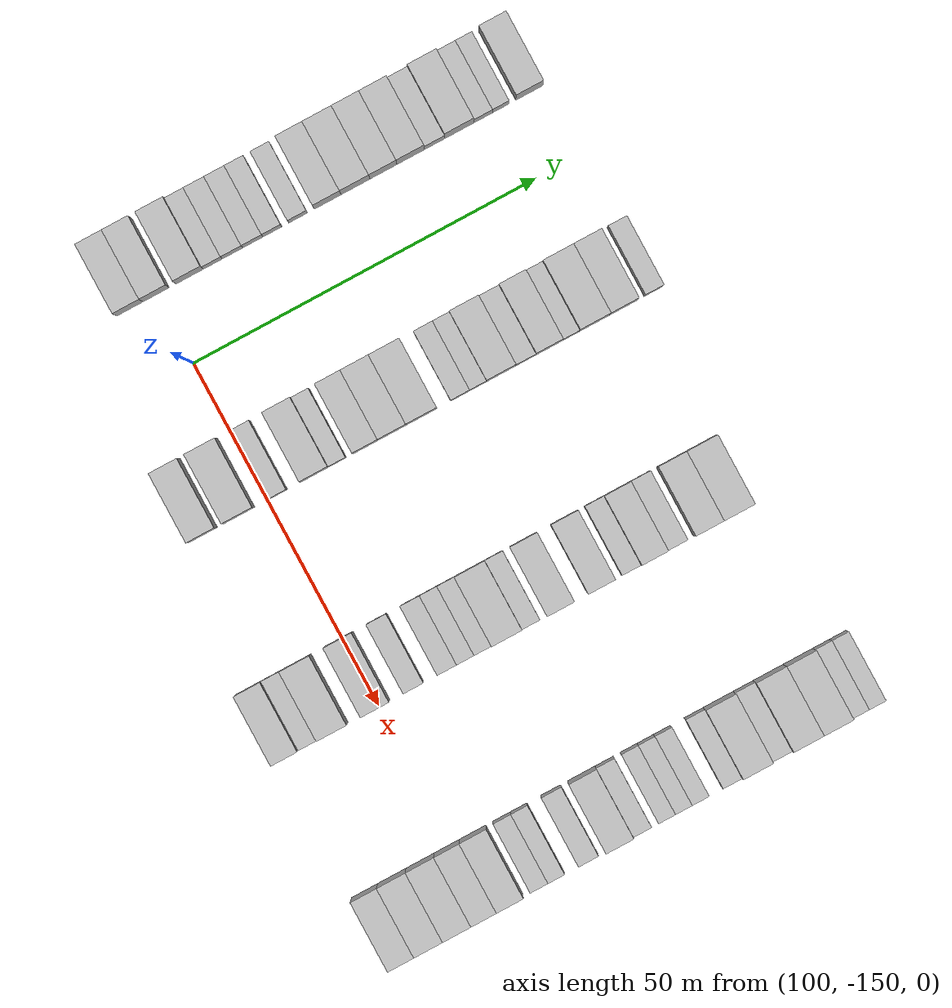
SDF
<sdf version="1.6">
 <world name="default">
  <model name="building_512">
   <static>1</static>
   <pose>85.0000 -153.8680 0 0.000000 0.000000 0.000000</pose>
   <link name="link">
    <pose>0 0 4.50 0 0 0</pose>
    <collision name="collision"><geometry><box><size>10.0000 3.8406 9.0000</size></box></geometry></collision>
    <visual name="visual">
     <cast_shadows>0</cast_shadows>
     <geometry><box><size>10.0000 3.8406 9.0000</size></box></geometry>
     <material>
      <script>
       <uri>model://HANNAS_wall/materials/scripts</uri>
       <uri>model://HANNAS_wall/materials/textures</uri>
       <name>vrc/HANNAS_wall</name>
      </script>
     </material>
    </visual>
   </link>
  </model>
  <model name="building_513">
   <static>1</static>
   <pose>85.0000 -150.0363 0 0.000000 0.000000 0.000000</pose>
   <link name="link">
    <pose>0 0 4.50 0 0 0</pose>
    <collision name="collision"><geometry><box><size>10.0000 3.8228 9.0000</size></box></geometry></collision>
    <visual name="visual">
     <cast_shadows>0</cast_shadows>
     <geometry><box><size>10.0000 3.8228 9.0000</size></box></geometry>
     <material>
      <script>
       <uri>model://HANNAS_wall/materials/scripts</uri>
       <uri>model://HANNAS_wall/materials/textures</uri>
       <name>vrc/HANNAS_wall</name>
      </script>
     </material>
    </visual>
   </link>
  </model>
  <model name="building_514">
   <static>1</static>
   <pose>85.0000 -145.1212 0 0.000000 0.000000 0.000000</pose>
   <link name="link">
    <pose>0 0 4.50 0 0 0</pose>
    <collision name="collision"><geometry><box><size>10.0000 4.0075 9.0000</size></box></geometry></collision>
    <visual name="visual">
     <cast_shadows>0</cast_shadows>
     <geometry><box><size>10.0000 4.0075 9.0000</size></box></geometry>
     <material>
      <script>
       <uri>model://HANNAS_wall/materials/scripts</uri>
       <uri>model://HANNAS_wall/materials/textures</uri>
       <name>vrc/HANNAS_wall</name>
      </script>
     </material>
    </visual>
   </link>
  </model>
  <model name="building_515">
   <static>1</static>
   <pose>85.0000 -141.7422 0 0.000000 0.000000 0.000000</pose>
   <link name="link">
    <pose>0 0 3.00 0 0 0</pose>
    <collision name="collision"><geometry><box><size>10.0000 2.7504 6.0000</size></box></geometry></collision>
    <visual name="visual">
     <cast_shadows>0</cast_shadows>
     <geometry><box><size>10.0000 2.7504 6.0000</size></box></geometry>
     <material>
      <script>
       <uri>model://HANNAS_wall/materials/scripts</uri>
       <uri>model://HANNAS_wall/materials/textures</uri>
       <name>vrc/HANNAS_wall</name>
      </script>
     </material>
    </visual>
   </link>
  </model>
  <model name="building_516">
   <static>1</static>
   <pose>85.0000 -138.8717 0 0.000000 0.000000 0.000000</pose>
   <link name="link">
    <pose>0 0 3.00 0 0 0</pose>
    <collision name="collision"><geometry><box><size>10.0000 2.9906 6.0000</size></box></geometry></collision>
    <visual name="visual">
     <cast_shadows>0</cast_shadows>
     <geometry><box><size>10.0000 2.9906 6.0000</size></box></geometry>
     <material>
      <script>
       <uri>model://HANNAS_wall/materials/scripts</uri>
       <uri>model://HANNAS_wall/materials/textures</uri>
       <name>vrc/HANNAS_wall</name>
      </script>
     </material>
    </visual>
   </link>
  </model>
  <model name="building_517">
   <static>1</static>
   <pose>85.0000 -135.9078 0 0.000000 0.000000 0.000000</pose>
   <link name="link">
    <pose>0 0 3.00 0 0 0</pose>
    <collision name="collision"><geometry><box><size>10.0000 2.9372 6.0000</size></box></geometry></collision>
    <visual name="visual">
     <cast_shadows>0</cast_shadows>
     <geometry><box><size>10.0000 2.9372 6.0000</size></box></geometry>
     <material>
      <script>
       <uri>model://HANNAS_wall/materials/scripts</uri>
       <uri>model://HANNAS_wall/materials/textures</uri>
       <name>vrc/HANNAS_wall</name>
      </script>
     </material>
    </visual>
   </link>
  </model>
  <model name="building_518">
   <static>1</static>
   <pose>85.0000 -133.0634 0 0.000000 0.000000 0.000000</pose>
   <link name="link">
    <pose>0 0 3.00 0 0 0</pose>
    <collision name="collision"><geometry><box><size>10.0000 2.7517 6.0000</size></box></geometry></collision>
    <visual name="visual">
     <cast_shadows>0</cast_shadows>
     <geometry><box><size>10.0000 2.7517 6.0000</size></box></geometry>
     <material>
      <script>
       <uri>model://HANNAS_wall/materials/scripts</uri>
       <uri>model://HANNAS_wall/materials/textures</uri>
       <name>vrc/HANNAS_wall</name>
      </script>
     </material>
    </visual>
   </link>
  </model>
  <model name="building_519">
   <static>1</static>
   <pose>85.0000 -129.3221 0 0.000000 0.000000 0.000000</pose>
   <link name="link">
    <pose>0 0 3.00 0 0 0</pose>
    <collision name="collision"><geometry><box><size>10.0000 2.7309 6.0000</size></box></geometry></collision>
    <visual name="visual">
     <cast_shadows>0</cast_shadows>
     <geometry><box><size>10.0000 2.7309 6.0000</size></box></geometry>
     <material>
      <script>
       <uri>model://HANNAS_wall/materials/scripts</uri>
       <uri>model://HANNAS_wall/materials/textures</uri>
       <name>vrc/HANNAS_wall</name>
      </script>
     </material>
    </visual>
   </link>
  </model>
  <model name="building_520">
   <static>1</static>
   <pose>85.0000 -125.0067 0 0.000000 0.000000 0.000000</pose>
   <link name="link">
    <pose>0 0 4.50 0 0 0</pose>
    <collision name="collision"><geometry><box><size>10.0000 3.8999 9.0000</size></box></geometry></collision>
    <visual name="visual">
     <cast_shadows>0</cast_shadows>
     <geometry><box><size>10.0000 3.8999 9.0000</size></box></geometry>
     <material>
      <script>
       <uri>model://HANNAS_wall/materials/scripts</uri>
       <uri>model://HANNAS_wall/materials/textures</uri>
       <name>vrc/HANNAS_wall</name>
      </script>
     </material>
    </visual>
   </link>
  </model>
  <model name="building_521">
   <static>1</static>
   <pose>85.0000 -120.9496 0 0.000000 0.000000 0.000000</pose>
   <link name="link">
    <pose>0 0 4.50 0 0 0</pose>
    <collision name="collision"><geometry><box><size>10.0000 4.2143 9.0000</size></box></geometry></collision>
    <visual name="visual">
     <cast_shadows>0</cast_shadows>
     <geometry><box><size>10.0000 4.2143 9.0000</size></box></geometry>
     <material>
      <script>
       <uri>model://HANNAS_wall/materials/scripts</uri>
       <uri>model://HANNAS_wall/materials/textures</uri>
       <name>vrc/HANNAS_wall</name>
      </script>
     </material>
    </visual>
   </link>
  </model>
  <model name="building_522">
   <static>1</static>
   <pose>85.0000 -116.8683 0 0.000000 0.000000 0.000000</pose>
   <link name="link">
    <pose>0 0 4.50 0 0 0</pose>
    <collision name="collision"><geometry><box><size>10.0000 3.9484 9.0000</size></box></geometry></collision>
    <visual name="visual">
     <cast_shadows>0</cast_shadows>
     <geometry><box><size>10.0000 3.9484 9.0000</size></box></geometry>
     <material>
      <script>
       <uri>model://HANNAS_wall/materials/scripts</uri>
       <uri>model://HANNAS_wall/materials/textures</uri>
       <name>vrc/HANNAS_wall</name>
      </script>
     </material>
    </visual>
   </link>
  </model>
  <model name="building_523">
   <static>1</static>
   <pose>85.0000 -112.8850 0 0.000000 0.000000 0.000000</pose>
   <link name="link">
    <pose>0 0 4.50 0 0 0</pose>
    <collision name="collision"><geometry><box><size>10.0000 4.0181 9.0000</size></box></geometry></collision>
    <visual name="visual">
     <cast_shadows>0</cast_shadows>
     <geometry><box><size>10.0000 4.0181 9.0000</size></box></geometry>
     <material>
      <script>
       <uri>model://HANNAS_wall/materials/scripts</uri>
       <uri>model://HANNAS_wall/materials/textures</uri>
       <name>vrc/HANNAS_wall</name>
      </script>
     </material>
    </visual>
   </link>
  </model>
  <model name="building_524">
   <static>1</static>
   <pose>85.0000 -109.3903 0 0.000000 0.000000 0.000000</pose>
   <link name="link">
    <pose>0 0 3.00 0 0 0</pose>
    <collision name="collision"><geometry><box><size>10.0000 2.9713 6.0000</size></box></geometry></collision>
    <visual name="visual">
     <cast_shadows>0</cast_shadows>
     <geometry><box><size>10.0000 2.9713 6.0000</size></box></geometry>
     <material>
      <script>
       <uri>model://HANNAS_wall/materials/scripts</uri>
       <uri>model://HANNAS_wall/materials/textures</uri>
       <name>vrc/HANNAS_wall</name>
      </script>
     </material>
    </visual>
   </link>
  </model>
  <model name="building_525">
   <static>1</static>
   <pose>85.0000 -105.7952 0 0.000000 0.000000 0.000000</pose>
   <link name="link">
    <pose>0 0 4.50 0 0 0</pose>
    <collision name="collision"><geometry><box><size>10.0000 4.2189 9.0000</size></box></geometry></collision>
    <visual name="visual">
     <cast_shadows>0</cast_shadows>
     <geometry><box><size>10.0000 4.2189 9.0000</size></box></geometry>
     <material>
      <script>
       <uri>model://HANNAS_wall/materials/scripts</uri>
       <uri>model://HANNAS_wall/materials/textures</uri>
       <name>vrc/HANNAS_wall</name>
      </script>
     </material>
    </visual>
   </link>
  </model>
  <model name="building_526">
   <static>1</static>
   <pose>85.0000 -102.3262 0 0.000000 0.000000 0.000000</pose>
   <link name="link">
    <pose>0 0 3.00 0 0 0</pose>
    <collision name="collision"><geometry><box><size>10.0000 2.7193 6.0000</size></box></geometry></collision>
    <visual name="visual">
     <cast_shadows>0</cast_shadows>
     <geometry><box><size>10.0000 2.7193 6.0000</size></box></geometry>
     <material>
      <script>
       <uri>model://HANNAS_wall/materials/scripts</uri>
       <uri>model://HANNAS_wall/materials/textures</uri>
       <name>vrc/HANNAS_wall</name>
      </script>
     </material>
    </visual>
   </link>
  </model>
  <model name="building_527">
   <static>1</static>
   <pose>85.0000 -99.7649 0 0.000000 0.000000 0.000000</pose>
   <link name="link">
    <pose>0 0 3.00 0 0 0</pose>
    <collision name="collision"><geometry><box><size>10.0000 2.4033 6.0000</size></box></geometry></collision>
    <visual name="visual">
     <cast_shadows>0</cast_shadows>
     <geometry><box><size>10.0000 2.4033 6.0000</size></box></geometry>
     <material>
      <script>
       <uri>model://HANNAS_wall/materials/scripts</uri>
       <uri>model://HANNAS_wall/materials/textures</uri>
       <name>vrc/HANNAS_wall</name>
      </script>
     </material>
    </visual>
   </link>
  </model>
  <model name="building_528">
   <static>1</static>
   <pose>85.0000 -95.5871 0 0.000000 0.000000 0.000000</pose>
   <link name="link">
    <pose>0 0 4.50 0 0 0</pose>
    <collision name="collision"><geometry><box><size>10.0000 3.9522 9.0000</size></box></geometry></collision>
    <visual name="visual">
     <cast_shadows>0</cast_shadows>
     <geometry><box><size>10.0000 3.9522 9.0000</size></box></geometry>
     <material>
      <script>
       <uri>model://HANNAS_wall/materials/scripts</uri>
       <uri>model://HANNAS_wall/materials/textures</uri>
       <name>vrc/HANNAS_wall</name>
      </script>
     </material>
    </visual>
   </link>
  </model>
  <model name="building_743">
   <static>1</static>
   <pose>115.0000 -159.3621 0 0.000000 0.000000 0.000000</pose>
   <link name="link">
    <pose>0 0 4.50 0 0 0</pose>
    <collision name="collision"><geometry><box><size>10.0000 4.0870 9.0000</size></box></geometry></collision>
    <visual name="visual">
     <cast_shadows>0</cast_shadows>
     <geometry><box><size>10.0000 4.0870 9.0000</size></box></geometry>
     <material>
      <script>
       <uri>model://HANNAS_wall/materials/scripts</uri>
       <uri>model://HANNAS_wall/materials/textures</uri>
       <name>vrc/HANNAS_wall</name>
      </script>
     </material>
    </visual>
   </link>
  </model>
  <model name="building_744">
   <static>1</static>
   <pose>115.0000 -154.0906 0 0.000000 0.000000 0.000000</pose>
   <link name="link">
    <pose>0 0 4.50 0 0 0</pose>
    <collision name="collision"><geometry><box><size>10.0000 4.4560 9.0000</size></box></geometry></collision>
    <visual name="visual">
     <cast_shadows>0</cast_shadows>
     <geometry><box><size>10.0000 4.4560 9.0000</size></box></geometry>
     <material>
      <script>
       <uri>model://HANNAS_wall/materials/scripts</uri>
       <uri>model://HANNAS_wall/materials/textures</uri>
       <name>vrc/HANNAS_wall</name>
      </script>
     </material>
    </visual>
   </link>
  </model>
  <model name="building_745">
   <static>1</static>
   <pose>115.0000 -148.4773 0 0.000000 0.000000 0.000000</pose>
   <link name="link">
    <pose>0 0 3.00 0 0 0</pose>
    <collision name="collision"><geometry><box><size>10.0000 2.7706 6.0000</size></box></geometry></collision>
    <visual name="visual">
     <cast_shadows>0</cast_shadows>
     <geometry><box><size>10.0000 2.7706 6.0000</size></box></geometry>
     <material>
      <script>
       <uri>model://HANNAS_wall/materials/scripts</uri>
       <uri>model://HANNAS_wall/materials/textures</uri>
       <name>vrc/HANNAS_wall</name>
      </script>
     </material>
    </visual>
   </link>
  </model>
  <model name="building_746">
   <static>1</static>
   <pose>115.0000 -143.0486 0 0.000000 0.000000 0.000000</pose>
   <link name="link">
    <pose>0 0 4.50 0 0 0</pose>
    <collision name="collision"><geometry><box><size>10.0000 4.0866 9.0000</size></box></geometry></collision>
    <visual name="visual">
     <cast_shadows>0</cast_shadows>
     <geometry><box><size>10.0000 4.0866 9.0000</size></box></geometry>
     <material>
      <script>
       <uri>model://HANNAS_wall/materials/scripts</uri>
       <uri>model://HANNAS_wall/materials/textures</uri>
       <name>vrc/HANNAS_wall</name>
      </script>
     </material>
    </visual>
   </link>
  </model>
  <model name="building_747">
   <static>1</static>
   <pose>115.0000 -139.7459 0 0.000000 0.000000 0.000000</pose>
   <link name="link">
    <pose>0 0 3.00 0 0 0</pose>
    <collision name="collision"><geometry><box><size>10.0000 2.5189 6.0000</size></box></geometry></collision>
    <visual name="visual">
     <cast_shadows>0</cast_shadows>
     <geometry><box><size>10.0000 2.5189 6.0000</size></box></geometry>
     <material>
      <script>
       <uri>model://HANNAS_wall/materials/scripts</uri>
       <uri>model://HANNAS_wall/materials/textures</uri>
       <name>vrc/HANNAS_wall</name>
      </script>
     </material>
    </visual>
   </link>
  </model>
  <model name="building_748">
   <static>1</static>
   <pose>115.0000 -135.6460 0 0.000000 0.000000 0.000000</pose>
   <link name="link">
    <pose>0 0 4.50 0 0 0</pose>
    <collision name="collision"><geometry><box><size>10.0000 3.6809 9.0000</size></box></geometry></collision>
    <visual name="visual">
     <cast_shadows>0</cast_shadows>
     <geometry><box><size>10.0000 3.6809 9.0000</size></box></geometry>
     <material>
      <script>
       <uri>model://HANNAS_wall/materials/scripts</uri>
       <uri>model://HANNAS_wall/materials/textures</uri>
       <name>vrc/HANNAS_wall</name>
      </script>
     </material>
    </visual>
   </link>
  </model>
  <model name="building_749">
   <static>1</static>
   <pose>115.0000 -131.7666 0 0.000000 0.000000 0.000000</pose>
   <link name="link">
    <pose>0 0 4.50 0 0 0</pose>
    <collision name="collision"><geometry><box><size>10.0000 4.0780 9.0000</size></box></geometry></collision>
    <visual name="visual">
     <cast_shadows>0</cast_shadows>
     <geometry><box><size>10.0000 4.0780 9.0000</size></box></geometry>
     <material>
      <script>
       <uri>model://HANNAS_wall/materials/scripts</uri>
       <uri>model://HANNAS_wall/materials/textures</uri>
       <name>vrc/HANNAS_wall</name>
      </script>
     </material>
    </visual>
   </link>
  </model>
  <model name="building_750">
   <static>1</static>
   <pose>115.0000 -127.4969 0 0.000000 0.000000 0.000000</pose>
   <link name="link">
    <pose>0 0 4.50 0 0 0</pose>
    <collision name="collision"><geometry><box><size>10.0000 4.4612 9.0000</size></box></geometry></collision>
    <visual name="visual">
     <cast_shadows>0</cast_shadows>
     <geometry><box><size>10.0000 4.4612 9.0000</size></box></geometry>
     <material>
      <script>
       <uri>model://HANNAS_wall/materials/scripts</uri>
       <uri>model://HANNAS_wall/materials/textures</uri>
       <name>vrc/HANNAS_wall</name>
      </script>
     </material>
    </visual>
   </link>
  </model>
  <model name="building_751">
   <static>1</static>
   <pose>115.0000 -121.8868 0 0.000000 0.000000 0.000000</pose>
   <link name="link">
    <pose>0 0 3.00 0 0 0</pose>
    <collision name="collision"><geometry><box><size>10.0000 2.7590 6.0000</size></box></geometry></collision>
    <visual name="visual">
     <cast_shadows>0</cast_shadows>
     <geometry><box><size>10.0000 2.7590 6.0000</size></box></geometry>
     <material>
      <script>
       <uri>model://HANNAS_wall/materials/scripts</uri>
       <uri>model://HANNAS_wall/materials/textures</uri>
       <name>vrc/HANNAS_wall</name>
      </script>
     </material>
    </visual>
   </link>
  </model>
  <model name="building_752">
   <static>1</static>
   <pose>115.0000 -119.2795 0 0.000000 0.000000 0.000000</pose>
   <link name="link">
    <pose>0 0 3.00 0 0 0</pose>
    <collision name="collision"><geometry><box><size>10.0000 2.4556 6.0000</size></box></geometry></collision>
    <visual name="visual">
     <cast_shadows>0</cast_shadows>
     <geometry><box><size>10.0000 2.4556 6.0000</size></box></geometry>
     <material>
      <script>
       <uri>model://HANNAS_wall/materials/scripts</uri>
       <uri>model://HANNAS_wall/materials/textures</uri>
       <name>vrc/HANNAS_wall</name>
      </script>
     </material>
    </visual>
   </link>
  </model>
  <model name="building_753">
   <static>1</static>
   <pose>115.0000 -115.9243 0 0.000000 0.000000 0.000000</pose>
   <link name="link">
    <pose>0 0 4.50 0 0 0</pose>
    <collision name="collision"><geometry><box><size>10.0000 4.2550 9.0000</size></box></geometry></collision>
    <visual name="visual">
     <cast_shadows>0</cast_shadows>
     <geometry><box><size>10.0000 4.2550 9.0000</size></box></geometry>
     <material>
      <script>
       <uri>model://HANNAS_wall/materials/scripts</uri>
       <uri>model://HANNAS_wall/materials/textures</uri>
       <name>vrc/HANNAS_wall</name>
      </script>
     </material>
    </visual>
   </link>
  </model>
  <model name="building_754">
   <static>1</static>
   <pose>115.0000 -112.3321 0 0.000000 0.000000 0.000000</pose>
   <link name="link">
    <pose>0 0 3.00 0 0 0</pose>
    <collision name="collision"><geometry><box><size>10.0000 2.9293 6.0000</size></box></geometry></collision>
    <visual name="visual">
     <cast_shadows>0</cast_shadows>
     <geometry><box><size>10.0000 2.9293 6.0000</size></box></geometry>
     <material>
      <script>
       <uri>model://HANNAS_wall/materials/scripts</uri>
       <uri>model://HANNAS_wall/materials/textures</uri>
       <name>vrc/HANNAS_wall</name>
      </script>
     </material>
    </visual>
   </link>
  </model>
  <model name="building_755">
   <static>1</static>
   <pose>115.0000 -108.9202 0 0.000000 0.000000 0.000000</pose>
   <link name="link">
    <pose>0 0 4.50 0 0 0</pose>
    <collision name="collision"><geometry><box><size>10.0000 3.8945 9.0000</size></box></geometry></collision>
    <visual name="visual">
     <cast_shadows>0</cast_shadows>
     <geometry><box><size>10.0000 3.8945 9.0000</size></box></geometry>
     <material>
      <script>
       <uri>model://HANNAS_wall/materials/scripts</uri>
       <uri>model://HANNAS_wall/materials/textures</uri>
       <name>vrc/HANNAS_wall</name>
      </script>
     </material>
    </visual>
   </link>
  </model>
  <model name="building_756">
   <static>1</static>
   <pose>115.0000 -105.7483 0 0.000000 0.000000 0.000000</pose>
   <link name="link">
    <pose>0 0 3.00 0 0 0</pose>
    <collision name="collision"><geometry><box><size>10.0000 2.4493 6.0000</size></box></geometry></collision>
    <visual name="visual">
     <cast_shadows>0</cast_shadows>
     <geometry><box><size>10.0000 2.4493 6.0000</size></box></geometry>
     <material>
      <script>
       <uri>model://HANNAS_wall/materials/scripts</uri>
       <uri>model://HANNAS_wall/materials/textures</uri>
       <name>vrc/HANNAS_wall</name>
      </script>
     </material>
    </visual>
   </link>
  </model>
  <model name="building_757">
   <static>1</static>
   <pose>115.0000 -102.3043 0 0.000000 0.000000 0.000000</pose>
   <link name="link">
    <pose>0 0 4.50 0 0 0</pose>
    <collision name="collision"><geometry><box><size>10.0000 4.4387 9.0000</size></box></geometry></collision>
    <visual name="visual">
     <cast_shadows>0</cast_shadows>
     <geometry><box><size>10.0000 4.4387 9.0000</size></box></geometry>
     <material>
      <script>
       <uri>model://HANNAS_wall/materials/scripts</uri>
       <uri>model://HANNAS_wall/materials/textures</uri>
       <name>vrc/HANNAS_wall</name>
      </script>
     </material>
    </visual>
   </link>
  </model>
  <model name="building_758">
   <static>1</static>
   <pose>115.0000 -98.0588 0 0.000000 0.000000 0.000000</pose>
   <link name="link">
    <pose>0 0 4.50 0 0 0</pose>
    <collision name="collision"><geometry><box><size>10.0000 4.0523 9.0000</size></box></geometry></collision>
    <visual name="visual">
     <cast_shadows>0</cast_shadows>
     <geometry><box><size>10.0000 4.0523 9.0000</size></box></geometry>
     <material>
      <script>
       <uri>model://HANNAS_wall/materials/scripts</uri>
       <uri>model://HANNAS_wall/materials/textures</uri>
       <name>vrc/HANNAS_wall</name>
      </script>
     </material>
    </visual>
   </link>
  </model>
  <model name="building_759">
   <static>1</static>
   <pose>115.0000 -93.6816 0 0.000000 0.000000 0.000000</pose>
   <link name="link">
    <pose>0 0 3.00 0 0 0</pose>
    <collision name="collision"><geometry><box><size>10.0000 2.7021 6.0000</size></box></geometry></collision>
    <visual name="visual">
     <cast_shadows>0</cast_shadows>
     <geometry><box><size>10.0000 2.7021 6.0000</size></box></geometry>
     <material>
      <script>
       <uri>model://HANNAS_wall/materials/scripts</uri>
       <uri>model://HANNAS_wall/materials/textures</uri>
       <name>vrc/HANNAS_wall</name>
      </script>
     </material>
    </visual>
   </link>
  </model>
  <model name="building_975">
   <static>1</static>
   <pose>145.0000 -163.4754 0 0.000000 0.000000 0.000000</pose>
   <link name="link">
    <pose>0 0 4.50 0 0 0</pose>
    <collision name="collision"><geometry><box><size>10.0000 3.8379 9.0000</size></box></geometry></collision>
    <visual name="visual">
     <cast_shadows>0</cast_shadows>
     <geometry><box><size>10.0000 3.8379 9.0000</size></box></geometry>
     <material>
      <script>
       <uri>model://HANNAS_wall/materials/scripts</uri>
       <uri>model://HANNAS_wall/materials/textures</uri>
       <name>vrc/HANNAS_wall</name>
      </script>
     </material>
    </visual>
   </link>
  </model>
  <model name="building_976">
   <static>1</static>
   <pose>145.0000 -160.1880 0 0.000000 0.000000 0.000000</pose>
   <link name="link">
    <pose>0 0 3.00 0 0 0</pose>
    <collision name="collision"><geometry><box><size>10.0000 2.7370 6.0000</size></box></geometry></collision>
    <visual name="visual">
     <cast_shadows>0</cast_shadows>
     <geometry><box><size>10.0000 2.7370 6.0000</size></box></geometry>
     <material>
      <script>
       <uri>model://HANNAS_wall/materials/scripts</uri>
       <uri>model://HANNAS_wall/materials/textures</uri>
       <name>vrc/HANNAS_wall</name>
      </script>
     </material>
    </visual>
   </link>
  </model>
  <model name="building_977">
   <static>1</static>
   <pose>145.0000 -156.6416 0 0.000000 0.000000 0.000000</pose>
   <link name="link">
    <pose>0 0 4.50 0 0 0</pose>
    <collision name="collision"><geometry><box><size>10.0000 4.3558 9.0000</size></box></geometry></collision>
    <visual name="visual">
     <cast_shadows>0</cast_shadows>
     <geometry><box><size>10.0000 4.3558 9.0000</size></box></geometry>
     <material>
      <script>
       <uri>model://HANNAS_wall/materials/scripts</uri>
       <uri>model://HANNAS_wall/materials/textures</uri>
       <name>vrc/HANNAS_wall</name>
      </script>
     </material>
    </visual>
   </link>
  </model>
  <model name="building_978">
   <static>1</static>
   <pose>145.0000 -150.4052 0 0.000000 0.000000 0.000000</pose>
   <link name="link">
    <pose>0 0 4.50 0 0 0</pose>
    <collision name="collision"><geometry><box><size>10.0000 4.1171 9.0000</size></box></geometry></collision>
    <visual name="visual">
     <cast_shadows>0</cast_shadows>
     <geometry><box><size>10.0000 4.1171 9.0000</size></box></geometry>
     <material>
      <script>
       <uri>model://HANNAS_wall/materials/scripts</uri>
       <uri>model://HANNAS_wall/materials/textures</uri>
       <name>vrc/HANNAS_wall</name>
      </script>
     </material>
    </visual>
   </link>
  </model>
  <model name="building_979">
   <static>1</static>
   <pose>145.0000 -144.8884 0 0.000000 0.000000 0.000000</pose>
   <link name="link">
    <pose>0 0 3.00 0 0 0</pose>
    <collision name="collision"><geometry><box><size>10.0000 2.9166 6.0000</size></box></geometry></collision>
    <visual name="visual">
     <cast_shadows>0</cast_shadows>
     <geometry><box><size>10.0000 2.9166 6.0000</size></box></geometry>
     <material>
      <script>
       <uri>model://HANNAS_wall/materials/scripts</uri>
       <uri>model://HANNAS_wall/materials/textures</uri>
       <name>vrc/HANNAS_wall</name>
      </script>
     </material>
    </visual>
   </link>
  </model>
  <model name="building_980">
   <static>1</static>
   <pose>145.0000 -140.0177 0 0.000000 0.000000 0.000000</pose>
   <link name="link">
    <pose>0 0 3.00 0 0 0</pose>
    <collision name="collision"><geometry><box><size>10.0000 2.8248 6.0000</size></box></geometry></collision>
    <visual name="visual">
     <cast_shadows>0</cast_shadows>
     <geometry><box><size>10.0000 2.8248 6.0000</size></box></geometry>
     <material>
      <script>
       <uri>model://HANNAS_wall/materials/scripts</uri>
       <uri>model://HANNAS_wall/materials/textures</uri>
       <name>vrc/HANNAS_wall</name>
      </script>
     </material>
    </visual>
   </link>
  </model>
  <model name="building_981">
   <static>1</static>
   <pose>145.0000 -137.3430 0 0.000000 0.000000 0.000000</pose>
   <link name="link">
    <pose>0 0 3.00 0 0 0</pose>
    <collision name="collision"><geometry><box><size>10.0000 2.5247 6.0000</size></box></geometry></collision>
    <visual name="visual">
     <cast_shadows>0</cast_shadows>
     <geometry><box><size>10.0000 2.5247 6.0000</size></box></geometry>
     <material>
      <script>
       <uri>model://HANNAS_wall/materials/scripts</uri>
       <uri>model://HANNAS_wall/materials/textures</uri>
       <name>vrc/HANNAS_wall</name>
      </script>
     </material>
    </visual>
   </link>
  </model>
  <model name="building_982">
   <static>1</static>
   <pose>145.0000 -134.8207 0 0.000000 0.000000 0.000000</pose>
   <link name="link">
    <pose>0 0 3.00 0 0 0</pose>
    <collision name="collision"><geometry><box><size>10.0000 2.5200 6.0000</size></box></geometry></collision>
    <visual name="visual">
     <cast_shadows>0</cast_shadows>
     <geometry><box><size>10.0000 2.5200 6.0000</size></box></geometry>
     <material>
      <script>
       <uri>model://HANNAS_wall/materials/scripts</uri>
       <uri>model://HANNAS_wall/materials/textures</uri>
       <name>vrc/HANNAS_wall</name>
      </script>
     </material>
    </visual>
   </link>
  </model>
  <model name="building_983">
   <static>1</static>
   <pose>145.0000 -131.3523 0 0.000000 0.000000 0.000000</pose>
   <link name="link">
    <pose>0 0 4.50 0 0 0</pose>
    <collision name="collision"><geometry><box><size>10.0000 4.4168 9.0000</size></box></geometry></collision>
    <visual name="visual">
     <cast_shadows>0</cast_shadows>
     <geometry><box><size>10.0000 4.4168 9.0000</size></box></geometry>
     <material>
      <script>
       <uri>model://HANNAS_wall/materials/scripts</uri>
       <uri>model://HANNAS_wall/materials/textures</uri>
       <name>vrc/HANNAS_wall</name>
      </script>
     </material>
    </visual>
   </link>
  </model>
  <model name="building_984">
   <static>1</static>
   <pose>145.0000 -127.8404 0 0.000000 0.000000 0.000000</pose>
   <link name="link">
    <pose>0 0 3.00 0 0 0</pose>
    <collision name="collision"><geometry><box><size>10.0000 2.6070 6.0000</size></box></geometry></collision>
    <visual name="visual">
     <cast_shadows>0</cast_shadows>
     <geometry><box><size>10.0000 2.6070 6.0000</size></box></geometry>
     <material>
      <script>
       <uri>model://HANNAS_wall/materials/scripts</uri>
       <uri>model://HANNAS_wall/materials/textures</uri>
       <name>vrc/HANNAS_wall</name>
      </script>
     </material>
    </visual>
   </link>
  </model>
  <model name="building_985">
   <static>1</static>
   <pose>145.0000 -123.5546 0 0.000000 0.000000 0.000000</pose>
   <link name="link">
    <pose>0 0 4.50 0 0 0</pose>
    <collision name="collision"><geometry><box><size>10.0000 3.9646 9.0000</size></box></geometry></collision>
    <visual name="visual">
     <cast_shadows>0</cast_shadows>
     <geometry><box><size>10.0000 3.9646 9.0000</size></box></geometry>
     <material>
      <script>
       <uri>model://HANNAS_wall/materials/scripts</uri>
       <uri>model://HANNAS_wall/materials/textures</uri>
       <name>vrc/HANNAS_wall</name>
      </script>
     </material>
    </visual>
   </link>
  </model>
  <model name="building_986">
   <static>1</static>
   <pose>145.0000 -117.6063 0 0.000000 0.000000 0.000000</pose>
   <link name="link">
    <pose>0 0 4.50 0 0 0</pose>
    <collision name="collision"><geometry><box><size>10.0000 3.9319 9.0000</size></box></geometry></collision>
    <visual name="visual">
     <cast_shadows>0</cast_shadows>
     <geometry><box><size>10.0000 3.9319 9.0000</size></box></geometry>
     <material>
      <script>
       <uri>model://HANNAS_wall/materials/scripts</uri>
       <uri>model://HANNAS_wall/materials/textures</uri>
       <name>vrc/HANNAS_wall</name>
      </script>
     </material>
    </visual>
   </link>
  </model>
  <model name="building_987">
   <static>1</static>
   <pose>145.0000 -113.2574 0 0.000000 0.000000 0.000000</pose>
   <link name="link">
    <pose>0 0 3.00 0 0 0</pose>
    <collision name="collision"><geometry><box><size>10.0000 2.7660 6.0000</size></box></geometry></collision>
    <visual name="visual">
     <cast_shadows>0</cast_shadows>
     <geometry><box><size>10.0000 2.7660 6.0000</size></box></geometry>
     <material>
      <script>
       <uri>model://HANNAS_wall/materials/scripts</uri>
       <uri>model://HANNAS_wall/materials/textures</uri>
       <name>vrc/HANNAS_wall</name>
      </script>
     </material>
    </visual>
   </link>
  </model>
  <model name="building_988">
   <static>1</static>
   <pose>145.0000 -109.9415 0 0.000000 0.000000 0.000000</pose>
   <link name="link">
    <pose>0 0 4.50 0 0 0</pose>
    <collision name="collision"><geometry><box><size>10.0000 3.8657 9.0000</size></box></geometry></collision>
    <visual name="visual">
     <cast_shadows>0</cast_shadows>
     <geometry><box><size>10.0000 3.8657 9.0000</size></box></geometry>
     <material>
      <script>
       <uri>model://HANNAS_wall/materials/scripts</uri>
       <uri>model://HANNAS_wall/materials/textures</uri>
       <name>vrc/HANNAS_wall</name>
      </script>
     </material>
    </visual>
   </link>
  </model>
  <model name="building_989">
   <static>1</static>
   <pose>145.0000 -106.5532 0 0.000000 0.000000 0.000000</pose>
   <link name="link">
    <pose>0 0 3.00 0 0 0</pose>
    <collision name="collision"><geometry><box><size>10.0000 2.9109 6.0000</size></box></geometry></collision>
    <visual name="visual">
     <cast_shadows>0</cast_shadows>
     <geometry><box><size>10.0000 2.9109 6.0000</size></box></geometry>
     <material>
      <script>
       <uri>model://HANNAS_wall/materials/scripts</uri>
       <uri>model://HANNAS_wall/materials/textures</uri>
       <name>vrc/HANNAS_wall</name>
      </script>
     </material>
    </visual>
   </link>
  </model>
  <model name="building_990">
   <static>1</static>
   <pose>145.0000 -102.0424 0 0.000000 0.000000 0.000000</pose>
   <link name="link">
    <pose>0 0 4.50 0 0 0</pose>
    <collision name="collision"><geometry><box><size>10.0000 4.1107 9.0000</size></box></geometry></collision>
    <visual name="visual">
     <cast_shadows>0</cast_shadows>
     <geometry><box><size>10.0000 4.1107 9.0000</size></box></geometry>
     <material>
      <script>
       <uri>model://HANNAS_wall/materials/scripts</uri>
       <uri>model://HANNAS_wall/materials/textures</uri>
       <name>vrc/HANNAS_wall</name>
      </script>
     </material>
    </visual>
   </link>
  </model>
  <model name="building_991">
   <static>1</static>
   <pose>145.0000 -97.7544 0 0.000000 0.000000 0.000000</pose>
   <link name="link">
    <pose>0 0 4.50 0 0 0</pose>
    <collision name="collision"><geometry><box><size>10.0000 4.4652 9.0000</size></box></geometry></collision>
    <visual name="visual">
     <cast_shadows>0</cast_shadows>
     <geometry><box><size>10.0000 4.4652 9.0000</size></box></geometry>
     <material>
      <script>
       <uri>model://HANNAS_wall/materials/scripts</uri>
       <uri>model://HANNAS_wall/materials/textures</uri>
       <name>vrc/HANNAS_wall</name>
      </script>
     </material>
    </visual>
   </link>
  </model>
  <model name="building_1202">
   <static>1</static>
   <pose>175.0000 -162.8658 0 0.000000 0.000000 0.000000</pose>
   <link name="link">
    <pose>0 0 4.50 0 0 0</pose>
    <collision name="collision"><geometry><box><size>10.0000 3.7765 9.0000</size></box></geometry></collision>
    <visual name="visual">
     <cast_shadows>0</cast_shadows>
     <geometry><box><size>10.0000 3.7765 9.0000</size></box></geometry>
     <material>
      <script>
       <uri>model://HANNAS_wall/materials/scripts</uri>
       <uri>model://HANNAS_wall/materials/textures</uri>
       <name>vrc/HANNAS_wall</name>
      </script>
     </material>
    </visual>
   </link>
  </model>
  <model name="building_1203">
   <static>1</static>
   <pose>175.0000 -158.9039 0 0.000000 0.000000 0.000000</pose>
   <link name="link">
    <pose>0 0 4.50 0 0 0</pose>
    <collision name="collision"><geometry><box><size>10.0000 4.1474 9.0000</size></box></geometry></collision>
    <visual name="visual">
     <cast_shadows>0</cast_shadows>
     <geometry><box><size>10.0000 4.1474 9.0000</size></box></geometry>
     <material>
      <script>
       <uri>model://HANNAS_wall/materials/scripts</uri>
       <uri>model://HANNAS_wall/materials/textures</uri>
       <name>vrc/HANNAS_wall</name>
      </script>
     </material>
    </visual>
   </link>
  </model>
  <model name="building_1204">
   <static>1</static>
   <pose>175.0000 -154.7855 0 0.000000 0.000000 0.000000</pose>
   <link name="link">
    <pose>0 0 4.50 0 0 0</pose>
    <collision name="collision"><geometry><box><size>10.0000 4.0894 9.0000</size></box></geometry></collision>
    <visual name="visual">
     <cast_shadows>0</cast_shadows>
     <geometry><box><size>10.0000 4.0894 9.0000</size></box></geometry>
     <material>
      <script>
       <uri>model://HANNAS_wall/materials/scripts</uri>
       <uri>model://HANNAS_wall/materials/textures</uri>
       <name>vrc/HANNAS_wall</name>
      </script>
     </material>
    </visual>
   </link>
  </model>
  <model name="building_1205">
   <static>1</static>
   <pose>175.0000 -150.9066 0 0.000000 0.000000 0.000000</pose>
   <link name="link">
    <pose>0 0 4.50 0 0 0</pose>
    <collision name="collision"><geometry><box><size>10.0000 3.6684 9.0000</size></box></geometry></collision>
    <visual name="visual">
     <cast_shadows>0</cast_shadows>
     <geometry><box><size>10.0000 3.6684 9.0000</size></box></geometry>
     <material>
      <script>
       <uri>model://HANNAS_wall/materials/scripts</uri>
       <uri>model://HANNAS_wall/materials/textures</uri>
       <name>vrc/HANNAS_wall</name>
      </script>
     </material>
    </visual>
   </link>
  </model>
  <model name="building_1206">
   <static>1</static>
   <pose>175.0000 -147.1222 0 0.000000 0.000000 0.000000</pose>
   <link name="link">
    <pose>0 0 4.50 0 0 0</pose>
    <collision name="collision"><geometry><box><size>10.0000 3.9005 9.0000</size></box></geometry></collision>
    <visual name="visual">
     <cast_shadows>0</cast_shadows>
     <geometry><box><size>10.0000 3.9005 9.0000</size></box></geometry>
     <material>
      <script>
       <uri>model://HANNAS_wall/materials/scripts</uri>
       <uri>model://HANNAS_wall/materials/textures</uri>
       <name>vrc/HANNAS_wall</name>
      </script>
     </material>
    </visual>
   </link>
  </model>
  <model name="building_1207">
   <static>1</static>
   <pose>175.0000 -142.8846 0 0.000000 0.000000 0.000000</pose>
   <link name="link">
    <pose>0 0 3.00 0 0 0</pose>
    <collision name="collision"><geometry><box><size>10.0000 2.5746 6.0000</size></box></geometry></collision>
    <visual name="visual">
     <cast_shadows>0</cast_shadows>
     <geometry><box><size>10.0000 2.5746 6.0000</size></box></geometry>
     <material>
      <script>
       <uri>model://HANNAS_wall/materials/scripts</uri>
       <uri>model://HANNAS_wall/materials/textures</uri>
       <name>vrc/HANNAS_wall</name>
      </script>
     </material>
    </visual>
   </link>
  </model>
  <model name="building_1208">
   <static>1</static>
   <pose>175.0000 -140.3868 0 0.000000 0.000000 0.000000</pose>
   <link name="link">
    <pose>0 0 3.00 0 0 0</pose>
    <collision name="collision"><geometry><box><size>10.0000 2.4210 6.0000</size></box></geometry></collision>
    <visual name="visual">
     <cast_shadows>0</cast_shadows>
     <geometry><box><size>10.0000 2.4210 6.0000</size></box></geometry>
     <material>
      <script>
       <uri>model://HANNAS_wall/materials/scripts</uri>
       <uri>model://HANNAS_wall/materials/textures</uri>
       <name>vrc/HANNAS_wall</name>
      </script>
     </material>
    </visual>
   </link>
  </model>
  <model name="building_1209">
   <static>1</static>
   <pose>175.0000 -135.7231 0 0.000000 0.000000 0.000000</pose>
   <link name="link">
    <pose>0 0 3.00 0 0 0</pose>
    <collision name="collision"><geometry><box><size>10.0000 2.9064 6.0000</size></box></geometry></collision>
    <visual name="visual">
     <cast_shadows>0</cast_shadows>
     <geometry><box><size>10.0000 2.9064 6.0000</size></box></geometry>
     <material>
      <script>
       <uri>model://HANNAS_wall/materials/scripts</uri>
       <uri>model://HANNAS_wall/materials/textures</uri>
       <name>vrc/HANNAS_wall</name>
      </script>
     </material>
    </visual>
   </link>
  </model>
  <model name="building_1210">
   <static>1</static>
   <pose>175.0000 -131.2558 0 0.000000 0.000000 0.000000</pose>
   <link name="link">
    <pose>0 0 4.50 0 0 0</pose>
    <collision name="collision"><geometry><box><size>10.0000 4.0282 9.0000</size></box></geometry></collision>
    <visual name="visual">
     <cast_shadows>0</cast_shadows>
     <geometry><box><size>10.0000 4.0282 9.0000</size></box></geometry>
     <material>
      <script>
       <uri>model://HANNAS_wall/materials/scripts</uri>
       <uri>model://HANNAS_wall/materials/textures</uri>
       <name>vrc/HANNAS_wall</name>
      </script>
     </material>
    </visual>
   </link>
  </model>
  <model name="building_1211">
   <static>1</static>
   <pose>175.0000 -127.9115 0 0.000000 0.000000 0.000000</pose>
   <link name="link">
    <pose>0 0 3.00 0 0 0</pose>
    <collision name="collision"><geometry><box><size>10.0000 2.6603 6.0000</size></box></geometry></collision>
    <visual name="visual">
     <cast_shadows>0</cast_shadows>
     <geometry><box><size>10.0000 2.6603 6.0000</size></box></geometry>
     <material>
      <script>
       <uri>model://HANNAS_wall/materials/scripts</uri>
       <uri>model://HANNAS_wall/materials/textures</uri>
       <name>vrc/HANNAS_wall</name>
      </script>
     </material>
    </visual>
   </link>
  </model>
  <model name="building_1212">
   <static>1</static>
   <pose>175.0000 -124.3561 0 0.000000 0.000000 0.000000</pose>
   <link name="link">
    <pose>0 0 3.00 0 0 0</pose>
    <collision name="collision"><geometry><box><size>10.0000 2.4505 6.0000</size></box></geometry></collision>
    <visual name="visual">
     <cast_shadows>0</cast_shadows>
     <geometry><box><size>10.0000 2.4505 6.0000</size></box></geometry>
     <material>
      <script>
       <uri>model://HANNAS_wall/materials/scripts</uri>
       <uri>model://HANNAS_wall/materials/textures</uri>
       <name>vrc/HANNAS_wall</name>
      </script>
     </material>
    </visual>
   </link>
  </model>
  <model name="building_1213">
   <static>1</static>
   <pose>175.0000 -121.9208 0 0.000000 0.000000 0.000000</pose>
   <link name="link">
    <pose>0 0 3.00 0 0 0</pose>
    <collision name="collision"><geometry><box><size>10.0000 2.4201 6.0000</size></box></geometry></collision>
    <visual name="visual">
     <cast_shadows>0</cast_shadows>
     <geometry><box><size>10.0000 2.4201 6.0000</size></box></geometry>
     <material>
      <script>
       <uri>model://HANNAS_wall/materials/scripts</uri>
       <uri>model://HANNAS_wall/materials/textures</uri>
       <name>vrc/HANNAS_wall</name>
      </script>
     </material>
    </visual>
   </link>
  </model>
  <model name="building_1214">
   <static>1</static>
   <pose>175.0000 -119.4776 0 0.000000 0.000000 0.000000</pose>
   <link name="link">
    <pose>0 0 3.00 0 0 0</pose>
    <collision name="collision"><geometry><box><size>10.0000 2.4664 6.0000</size></box></geometry></collision>
    <visual name="visual">
     <cast_shadows>0</cast_shadows>
     <geometry><box><size>10.0000 2.4664 6.0000</size></box></geometry>
     <material>
      <script>
       <uri>model://HANNAS_wall/materials/scripts</uri>
       <uri>model://HANNAS_wall/materials/textures</uri>
       <name>vrc/HANNAS_wall</name>
      </script>
     </material>
    </visual>
   </link>
  </model>
  <model name="building_1215">
   <static>1</static>
   <pose>175.0000 -114.8611 0 0.000000 0.000000 0.000000</pose>
   <link name="link">
    <pose>0 0 3.00 0 0 0</pose>
    <collision name="collision"><geometry><box><size>10.0000 2.7667 6.0000</size></box></geometry></collision>
    <visual name="visual">
     <cast_shadows>0</cast_shadows>
     <geometry><box><size>10.0000 2.7667 6.0000</size></box></geometry>
     <material>
      <script>
       <uri>model://HANNAS_wall/materials/scripts</uri>
       <uri>model://HANNAS_wall/materials/textures</uri>
       <name>vrc/HANNAS_wall</name>
      </script>
     </material>
    </visual>
   </link>
  </model>
  <model name="building_1216">
   <static>1</static>
   <pose>175.0000 -111.2883 0 0.000000 0.000000 0.000000</pose>
   <link name="link">
    <pose>0 0 4.50 0 0 0</pose>
    <collision name="collision"><geometry><box><size>10.0000 4.3788 9.0000</size></box></geometry></collision>
    <visual name="visual">
     <cast_shadows>0</cast_shadows>
     <geometry><box><size>10.0000 4.3788 9.0000</size></box></geometry>
     <material>
      <script>
       <uri>model://HANNAS_wall/materials/scripts</uri>
       <uri>model://HANNAS_wall/materials/textures</uri>
       <name>vrc/HANNAS_wall</name>
      </script>
     </material>
    </visual>
   </link>
  </model>
  <model name="building_1217">
   <static>1</static>
   <pose>175.0000 -107.6567 0 0.000000 0.000000 0.000000</pose>
   <link name="link">
    <pose>0 0 3.00 0 0 0</pose>
    <collision name="collision"><geometry><box><size>10.0000 2.8844 6.0000</size></box></geometry></collision>
    <visual name="visual">
     <cast_shadows>0</cast_shadows>
     <geometry><box><size>10.0000 2.8844 6.0000</size></box></geometry>
     <material>
      <script>
       <uri>model://HANNAS_wall/materials/scripts</uri>
       <uri>model://HANNAS_wall/materials/textures</uri>
       <name>vrc/HANNAS_wall</name>
      </script>
     </material>
    </visual>
   </link>
  </model>
  <model name="building_1218">
   <static>1</static>
   <pose>175.0000 -104.0142 0 0.000000 0.000000 0.000000</pose>
   <link name="link">
    <pose>0 0 4.50 0 0 0</pose>
    <collision name="collision"><geometry><box><size>10.0000 4.4006 9.0000</size></box></geometry></collision>
    <visual name="visual">
     <cast_shadows>0</cast_shadows>
     <geometry><box><size>10.0000 4.4006 9.0000</size></box></geometry>
     <material>
      <script>
       <uri>model://HANNAS_wall/materials/scripts</uri>
       <uri>model://HANNAS_wall/materials/textures</uri>
       <name>vrc/HANNAS_wall</name>
      </script>
     </material>
    </visual>
   </link>
  </model>
  <model name="building_1219">
   <static>1</static>
   <pose>175.0000 -99.6656 0 0.000000 0.000000 0.000000</pose>
   <link name="link">
    <pose>0 0 4.50 0 0 0</pose>
    <collision name="collision"><geometry><box><size>10.0000 4.2967 9.0000</size></box></geometry></collision>
    <visual name="visual">
     <cast_shadows>0</cast_shadows>
     <geometry><box><size>10.0000 4.2967 9.0000</size></box></geometry>
     <material>
      <script>
       <uri>model://HANNAS_wall/materials/scripts</uri>
       <uri>model://HANNAS_wall/materials/textures</uri>
       <name>vrc/HANNAS_wall</name>
      </script>
     </material>
    </visual>
   </link>
  </model>
  <model name="building_1220">
   <static>1</static>
   <pose>175.0000 -96.2947 0 0.000000 0.000000 0.000000</pose>
   <link name="link">
    <pose>0 0 3.00 0 0 0</pose>
    <collision name="collision"><geometry><box><size>10.0000 2.4450 6.0000</size></box></geometry></collision>
    <visual name="visual">
     <cast_shadows>0</cast_shadows>
     <geometry><box><size>10.0000 2.4450 6.0000</size></box></geometry>
     <material>
      <script>
       <uri>model://HANNAS_wall/materials/scripts</uri>
       <uri>model://HANNAS_wall/materials/textures</uri>
       <name>vrc/HANNAS_wall</name>
      </script>
     </material>
    </visual>
   </link>
  </model>
  <model name="building_1221">
   <static>1</static>
   <pose>175.0000 -93.8580 0 0.000000 0.000000 0.000000</pose>
   <link name="link">
    <pose>0 0 3.00 0 0 0</pose>
    <collision name="collision"><geometry><box><size>10.0000 2.4284 6.0000</size></box></geometry></collision>
    <visual name="visual">
     <cast_shadows>0</cast_shadows>
     <geometry><box><size>10.0000 2.4284 6.0000</size></box></geometry>
     <material>
      <script>
       <uri>model://HANNAS_wall/materials/scripts</uri>
       <uri>model://HANNAS_wall/materials/textures</uri>
       <name>vrc/HANNAS_wall</name>
      </script>
     </material>
    </visual>
   </link>
  </model>
 </world>
</sdf>
